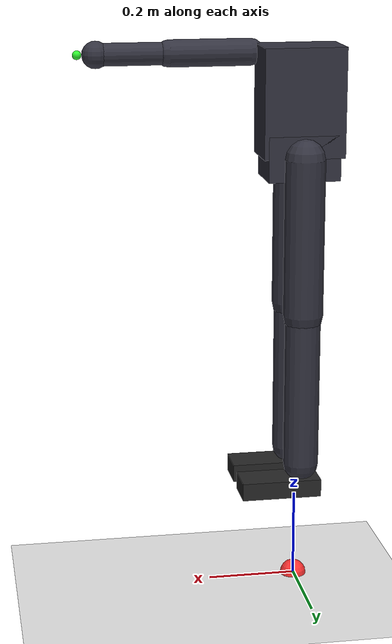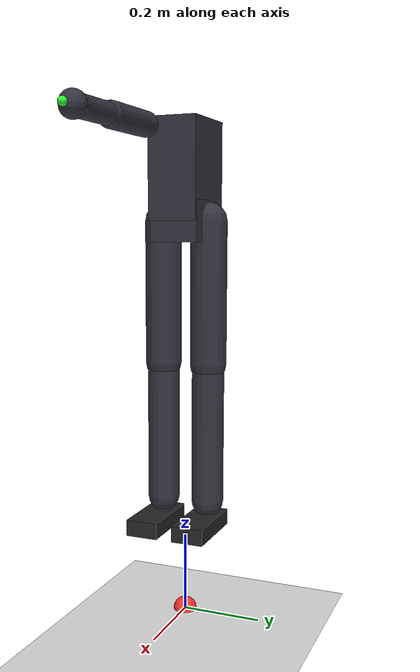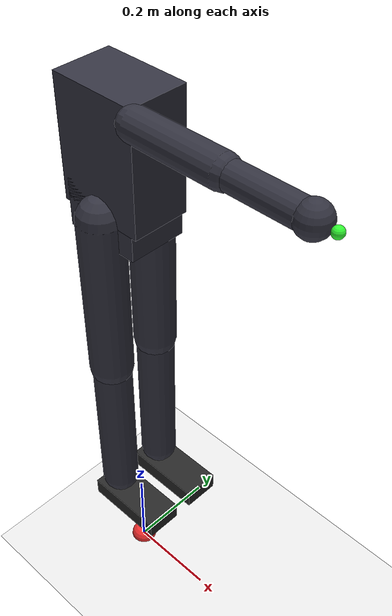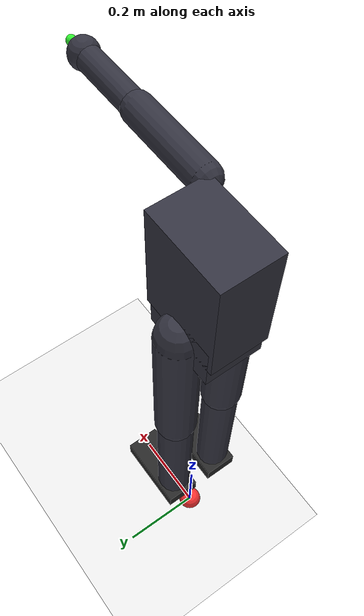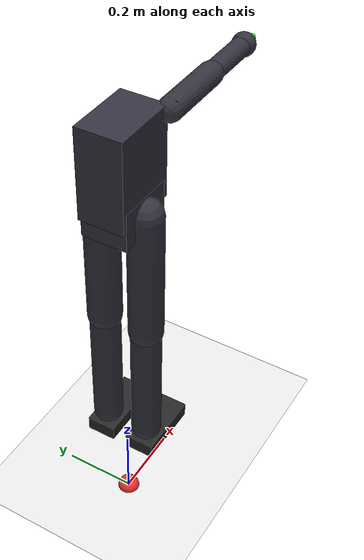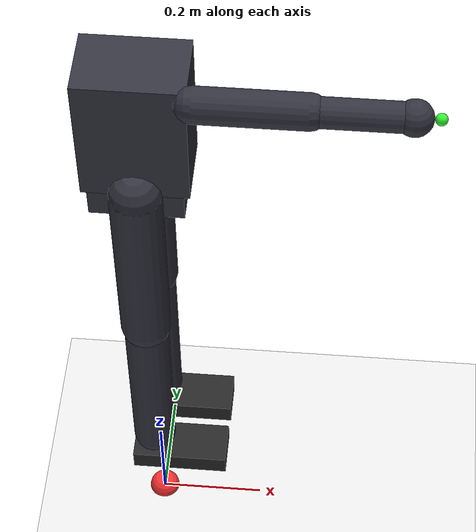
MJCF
<mujoco model="simple_humanoid_reacher">
  <compiler angle="degree" coordinate="local" inertiafromgeom="true"/>
  <option timestep="0.002" gravity="0 0 -9.81" iterations="50" solver="Newton"/>

  <!-- Default settings -->
  <default>
    <joint limited="true" damping="1.0" armature="0.01"/>
    <geom contype="1" conaffinity="1" friction="1.2 0.02 0.0001"
          solref="0.02 1" solimp="0.9 0.95 0.001"
          density="500"/>
    <motor ctrllimited="true" ctrlrange="-1 1"/>
  </default>

  <asset>
    <texture type="skybox" builtin="gradient" rgb1="0.9 0.9 0.95" rgb2="0.6 0.7 0.9" width="256" height="256"/>
    <material name="mat_body" rgba="0.2 0.2 0.25 1"/>
    <material name="mat_foot" rgba="0.15 0.15 0.15 1"/>
    <material name="mat_target" rgba="1 0.2 0.2 1"/>
  </asset>

  <worldbody>
    <!-- Ground -->
    <geom name="ground" type="plane" size="5 5 0.1" rgba="0.9 0.9 0.9 1"
          friction="1.3 0.02 0.0001"/>

    <!-- Target site (will be moved in Python by setting site_pos) -->
    <site name="target_site" type="sphere" size="0.03" rgba="1 0.2 0.2 1"/>

    <!-- Humanoid -->
    <body name="pelvis" pos="0 0 1.0">
      <freejoint name="root"/>

      <!-- pelvis geom -->
      <geom name="pelvis_geom" type="box" size="0.08 0.06 0.05" material="mat_body"/>

      <!-- torso -->
      <body name="torso" pos="0 0 0.12">
        <joint name="spine_pitch" type="hinge" axis="0 1 0" range="-20 20"/>
        <geom name="torso_geom" type="box" size="0.09 0.06 0.12" material="mat_body"/>

        <!-- Right arm (reaching arm) -->
        <body name="r_shoulder" pos="0.10 -0.06 0.10">
          <joint name="r_shoulder_pitch" type="hinge" axis="0 1 0" range="-90 90"/>
          <joint name="r_shoulder_roll"  type="hinge" axis="1 0 0" range="-60 60"/>
          <geom name="r_upperarm_geom" type="capsule" fromto="0 0 0  0.18 0 0" size="0.03" material="mat_body"/>

          <body name="r_elbow" pos="0.18 0 0">
            <joint name="r_elbow_pitch" type="hinge" axis="0 1 0" range="0 135"/>
            <geom name="r_forearm_geom" type="capsule" fromto="0 0 0  0.16 0 0" size="0.025" material="mat_body"/>

            <body name="r_hand" pos="0.16 0 0">
              <geom name="r_hand_geom" type="sphere" size="0.03" material="mat_body"/>
              <site name="end_effector" pos="0.04 0 0" size="0.01" rgba="0.2 1 0.2 1"/>
            </body>
          </body>
        </body>
      </body>

      <!-- Right leg -->
      <body name="r_hip" pos="0 -0.06 0">
        <joint name="r_hip_yaw"   type="hinge" axis="0 0 1" range="-30 30"/>
        <joint name="r_hip_roll"  type="hinge" axis="1 0 0" range="-25 25"/>
        <joint name="r_hip_pitch" type="hinge" axis="0 1 0" range="-60 30"/>
        <geom name="r_thigh_geom" type="capsule" fromto="0 0 0  0 0 -0.35" size="0.045" material="mat_body"/>

        <body name="r_knee" pos="0 0 -0.35">
          <joint name="r_knee_pitch" type="hinge" axis="0 1 0" range="0 140"/>
          <geom name="r_shank_geom" type="capsule" fromto="0 0 0  0 0 -0.35" size="0.04" material="mat_body"/>

          <body name="r_ankle" pos="0 0 -0.35">
            <joint name="r_ankle_pitch" type="hinge" axis="0 1 0" range="-40 40"/>
            <joint name="r_ankle_roll"  type="hinge" axis="1 0 0" range="-25 25"/>

            <body name="r_foot" pos="0 0 -0.05">
              <geom name="r_foot_geom" type="box" size="0.09 0.04 0.02" pos="0.05 0 0" material="mat_foot"/>
            </body>
          </body>
        </body>
      </body>

      <!-- Left leg -->
      <body name="l_hip" pos="0 0.06 0">
        <joint name="l_hip_yaw"   type="hinge" axis="0 0 1" range="-30 30"/>
        <joint name="l_hip_roll"  type="hinge" axis="1 0 0" range="-25 25"/>
        <joint name="l_hip_pitch" type="hinge" axis="0 1 0" range="-60 30"/>
        <geom name="l_thigh_geom" type="capsule" fromto="0 0 0  0 0 -0.35" size="0.045" material="mat_body"/>

        <body name="l_knee" pos="0 0 -0.35">
          <joint name="l_knee_pitch" type="hinge" axis="0 1 0" range="0 140"/>
          <geom name="l_shank_geom" type="capsule" fromto="0 0 0  0 0 -0.35" size="0.04" material="mat_body"/>

          <body name="l_ankle" pos="0 0 -0.35">
            <joint name="l_ankle_pitch" type="hinge" axis="0 1 0" range="-40 40"/>
            <joint name="l_ankle_roll"  type="hinge" axis="1 0 0" range="-25 25"/>

            <body name="l_foot" pos="0 0 -0.05">
              <geom name="l_foot_geom" type="box" size="0.09 0.04 0.02" pos="0.05 0 0" material="mat_foot"/>
            </body>
          </body>
        </body>
      </body>

    </body>
  </worldbody>

  <!-- Actuators: position control per joint -->
  <actuator>
    <!-- spine -->
    <position name="act_spine_pitch" joint="spine_pitch" kp="80" ctrlrange="-0.35 0.35"/>

    <!-- right arm -->
    <position name="act_r_shoulder_pitch" joint="r_shoulder_pitch" kp="60" ctrlrange="-1.2 1.2"/>
    <position name="act_r_shoulder_roll"  joint="r_shoulder_roll"  kp="60" ctrlrange="-1.0 1.0"/>
    <position name="act_r_elbow_pitch"    joint="r_elbow_pitch"    kp="50" ctrlrange="0 2.2"/>

    <!-- right leg -->
    <position name="act_r_hip_yaw"   joint="r_hip_yaw"   kp="120" ctrlrange="-0.6 0.6"/>
    <position name="act_r_hip_roll"  joint="r_hip_roll"  kp="140" ctrlrange="-0.5 0.5"/>
    <position name="act_r_hip_pitch" joint="r_hip_pitch" kp="240" ctrlrange="-1.0 0.5"/>
    <position name="act_r_knee"      joint="r_knee_pitch" kp="320" ctrlrange="0 2.4"/>
    <position name="act_r_ankle_pitch" joint="r_ankle_pitch" kp="180" ctrlrange="-0.7 0.7"/>
    <position name="act_r_ankle_roll"  joint="r_ankle_roll"  kp="160" ctrlrange="-0.5 0.5"/>

    <!-- left leg -->
    <position name="act_l_hip_yaw"   joint="l_hip_yaw"   kp="120" ctrlrange="-0.6 0.6"/>
    <position name="act_l_hip_roll"  joint="l_hip_roll"  kp="140" ctrlrange="-0.5 0.5"/>
    <position name="act_l_hip_pitch" joint="l_hip_pitch" kp="240" ctrlrange="-1.0 0.5"/>
    <position name="act_l_knee"      joint="l_knee_pitch" kp="320" ctrlrange="0 2.4"/>
    <position name="act_l_ankle_pitch" joint="l_ankle_pitch" kp="180" ctrlrange="-0.7 0.7"/>
    <position name="act_l_ankle_roll"  joint="l_ankle_roll"  kp="160" ctrlrange="-0.5 0.5"/>
  </actuator>
</mujoco>
